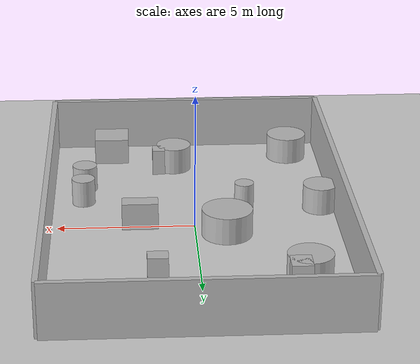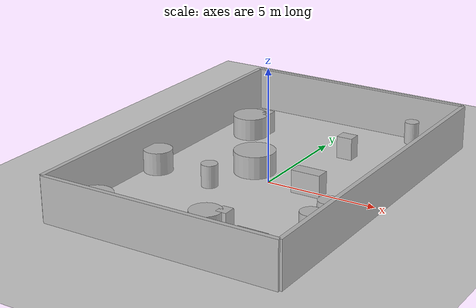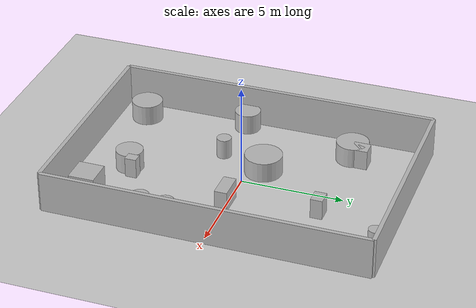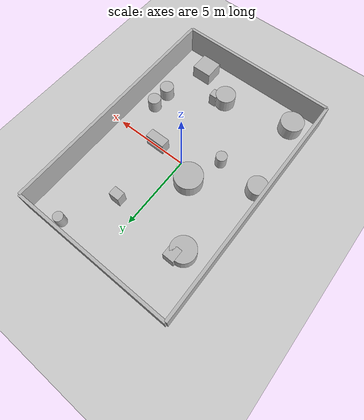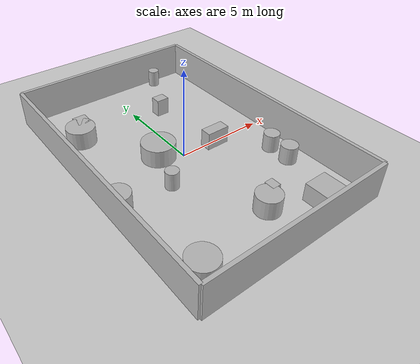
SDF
<?xml version="1.0"?>
<sdf version="1.6">
  <world name="env_25">

    <include><uri>model://ground_plane</uri></include>
    <include><uri>model://sun</uri></include>

    <!-- WALLS -->
    <model name="wall_north"><static>true</static><pose>0 7.91305869630113 1 0 0 0</pose>
      <link name="link"><collision name="collision">
        <geometry><box><size>10.648340170663369 0.2 2</size></box></geometry>
      </collision><visual name="visual">
        <geometry><box><size>10.648340170663369 0.2 2</size></box></geometry>
      </visual></link>
    </model>

    <model name="wall_south"><static>true</static><pose>0 -7.91305869630113 1 0 0 0</pose>
      <link name="link"><collision name="collision">
        <geometry><box><size>10.648340170663369 0.2 2</size></box></geometry>
      </collision><visual name="visual">
        <geometry><box><size>10.648340170663369 0.2 2</size></box></geometry>
      </visual></link>
    </model>

    <model name="wall_east"><static>true</static><pose>5.3241700853316845 0 1 0 0 1.57</pose>
      <link name="link"><collision name="collision">
        <geometry><box><size>15.82611739260226 0.2 2</size></box></geometry>
      </collision><visual name="visual">
        <geometry><box><size>15.82611739260226 0.2 2</size></box></geometry>
      </visual></link>
    </model>

    <model name="wall_west"><static>true</static><pose>-5.3241700853316845 0 1 0 0 1.57</pose>
      <link name="link"><collision name="collision">
        <geometry><box><size>15.82611739260226 0.2 2</size></box></geometry>
      </collision><visual name="visual">
        <geometry><box><size>15.82611739260226 0.2 2</size></box></geometry>
      </visual></link>
    </model>

    <!-- SENSOR -->

    <model name="lidar_sensor">
      <static>true</static>
      <pose>0.4134715641100808 -3.060163700009597 0.4 0 0 0</pose>
      <link name="link">
        <sensor name="lidar" type="ray">
          <pose>0 0 0 0 0 0</pose>
          <visualize>true</visualize>
          <always_on>true</always_on>
          <update_rate>10</update_rate>
          <ray>
            <scan><horizontal>
              <samples>180</samples>
              <resolution>1</resolution>
              <min_angle>-3.14159</min_angle>
              <max_angle>3.14159</max_angle>
            </horizontal></scan>
            <range><min>0.15</min><max>20.0</max><resolution>0.01</resolution></range>
          </ray>
          <plugin name="lidar_plugin" filename="liblidar_plugin.so"/>
        </sensor>
      </link>
    </model>

    <!-- OBSTACLES -->

    <model name="obstacle_0">
      <static>true</static>
      <pose>1.470570004923168 4.254965874789217 0.5 0 0 0</pose>
      <link name="link">
        <collision name="collision">
          <geometry><box><size>0.72 0.58 1.0</size></box></geometry>
        </collision>
        <visual name="visual">
          <geometry><box><size>0.72 0.58 1.0</size></box></geometry>
        </visual>
      </link>
    </model>

    <model name="obstacle_1">
      <static>true</static>
      <pose>1.1853989796101416 -5.090047691436453 0.5 0 0 0</pose>
      <link name="link">
        <collision name="collision">
          <geometry><box><size>0.48 0.56 1.0</size></box></geometry>
        </collision>
        <visual name="visual">
          <geometry><box><size>0.48 0.56 1.0</size></box></geometry>
        </visual>
      </link>
    </model>

    <model name="obstacle_2">
      <static>true</static>
      <pose>3.033601964683765 -6.636413000465731 0.5 0 0 0</pose>
      <link name="link">
        <collision name="collision">
          <geometry><box><size>1.33 1.27 1.0</size></box></geometry>
        </collision>
        <visual name="visual">
          <geometry><box><size>1.33 1.27 1.0</size></box></geometry>
        </visual>
      </link>
    </model>

    <model name="obstacle_3">
      <static>true</static>
      <pose>2.00007328218396 -0.09393250905593842 0.5 0 0 0</pose>
      <link name="link">
        <collision name="collision">
          <geometry><box><size>1.32 0.62 1.0</size></box></geometry>
        </collision>
        <visual name="visual">
          <geometry><box><size>1.32 0.62 1.0</size></box></geometry>
        </visual>
      </link>
    </model>

    <model name="obstacle_4">
      <static>true</static>
      <pose>-1.1163599517221106 0.7189660362219144 0.5 0 0 0</pose>
      <link name="link">
        <collision name="collision">
          <geometry><cylinder><radius>0.92</radius><length>1.0</length></cylinder></geometry>
        </collision>
        <visual name="visual">
          <geometry><cylinder><radius>0.92</radius><length>1.0</length></cylinder></geometry>
        </visual>
      </link>
    </model>

    <model name="obstacle_5">
      <static>true</static>
      <pose>-1.9120528303622115 -1.5667178775615591 0.5 0 0 0</pose>
      <link name="link">
        <collision name="collision">
          <geometry><cylinder><radius>0.36</radius><length>1.0</length></cylinder></geometry>
        </collision>
        <visual name="visual">
          <geometry><cylinder><radius>0.36</radius><length>1.0</length></cylinder></geometry>
        </visual>
      </link>
    </model>

    <model name="obstacle_6">
      <static>true</static>
      <pose>4.056325953962642 -3.5241715255661443 0.5 0 0 0</pose>
      <link name="link">
        <collision name="collision">
          <geometry><cylinder><radius>0.46</radius><length>1.0</length></cylinder></geometry>
        </collision>
        <visual name="visual">
          <geometry><cylinder><radius>0.46</radius><length>1.0</length></cylinder></geometry>
        </visual>
      </link>
    </model>

    <model name="obstacle_7">
      <static>true</static>
      <pose>0.5796253191317149 -5.478710816525814 0.5 0 0 0</pose>
      <link name="link">
        <collision name="collision">
          <geometry><cylinder><radius>0.67</radius><length>1.0</length></cylinder></geometry>
        </collision>
        <visual name="visual">
          <geometry><cylinder><radius>0.67</radius><length>1.0</length></cylinder></geometry>
        </visual>
      </link>
    </model>

    <model name="obstacle_8">
      <static>true</static>
      <pose>3.128998256715839 7.389419637046494 0.5 0 0 0</pose>
      <link name="link">
        <collision name="collision">
          <geometry><cylinder><radius>0.32</radius><length>1.0</length></cylinder></geometry>
        </collision>
        <visual name="visual">
          <geometry><cylinder><radius>0.32</radius><length>1.0</length></cylinder></geometry>
        </visual>
      </link>
    </model>

    <model name="obstacle_9">
      <static>true</static>
      <pose>-4.732376219105378 -1.3322078758958042 0.5 0 0 0</pose>
      <link name="link">
        <collision name="collision">
          <geometry><cylinder><radius>0.64</radius><length>1.0</length></cylinder></geometry>
        </collision>
        <visual name="visual">
          <geometry><cylinder><radius>0.64</radius><length>1.0</length></cylinder></geometry>
        </visual>
      </link>
    </model>

    <model name="obstacle_10">
      <static>true</static>
      <pose>-3.6492243330970524 4.39744675424614 0.5 0 0 0</pose>
      <link name="link">
        <collision name="collision">
          <geometry><cylinder><radius>0.8</radius><length>1.0</length></cylinder></geometry>
        </collision>
        <visual name="visual">
          <geometry><cylinder><radius>0.8</radius><length>1.0</length></cylinder></geometry>
        </visual>
      </link>
    </model>

    <model name="obstacle_11">
      <static>true</static>
      <pose>4.0894551784475235 -2.2551841021357024 0.5 0 0 0</pose>
      <link name="link">
        <collision name="collision">
          <geometry><cylinder><radius>0.43</radius><length>1.0</length></cylinder></geometry>
        </collision>
        <visual name="visual">
          <geometry><cylinder><radius>0.43</radius><length>1.0</length></cylinder></geometry>
        </visual>
      </link>
    </model>

    <model name="obstacle_12">
      <static>true</static>
      <pose>-3.281271357273411 4.913114520347738 0.5 0 0 0</pose>
      <link name="link">
        <collision name="collision">
          <geometry><box><size>0.74 0.82 1.0</size></box></geometry>
        </collision>
        <visual name="visual">
          <geometry><box><size>0.74 0.82 1.0</size></box></geometry>
        </visual>
      </link>
    </model>

    <model name="obstacle_13">
      <static>true</static>
      <pose>-4.014896851401166 -6.426367855988794 0.5 0 0 0</pose>
      <link name="link">
        <collision name="collision">
          <geometry><cylinder><radius>0.77</radius><length>1.0</length></cylinder></geometry>
        </collision>
        <visual name="visual">
          <geometry><cylinder><radius>0.77</radius><length>1.0</length></cylinder></geometry>
        </visual>
      </link>
    </model>

  </world>
</sdf>
